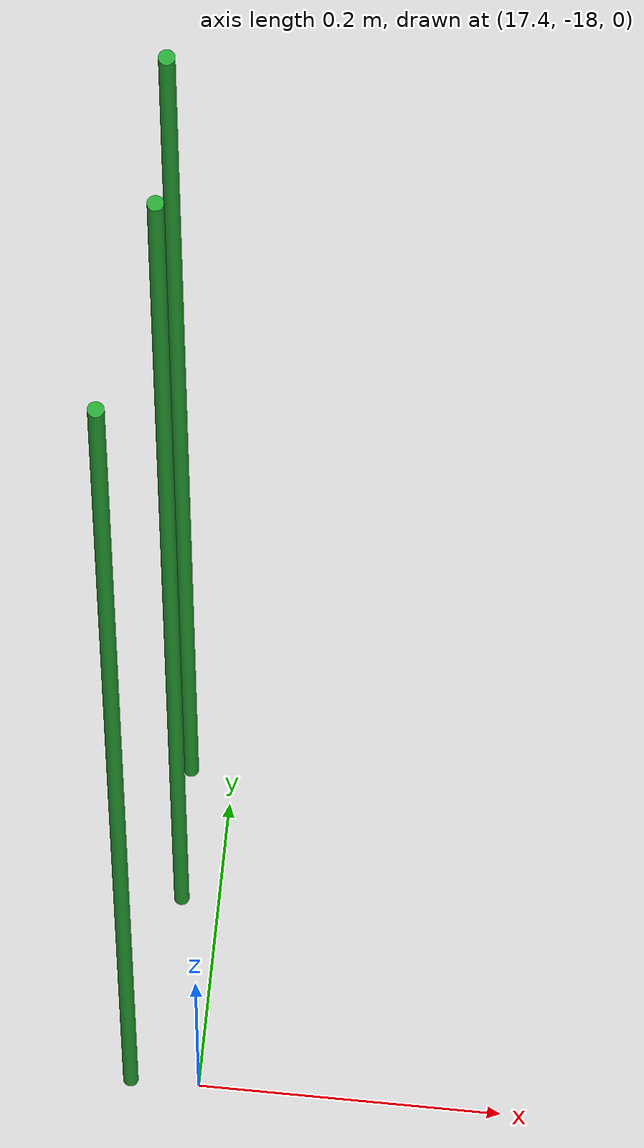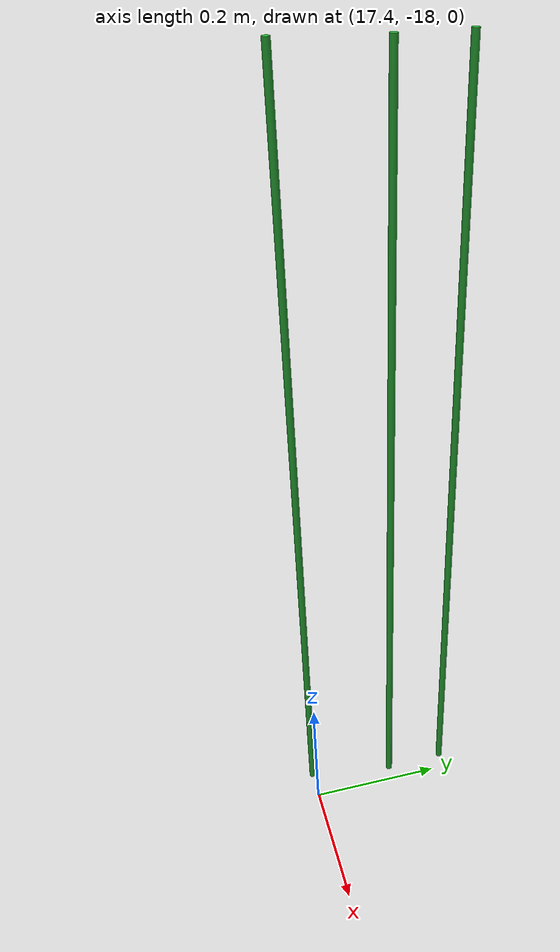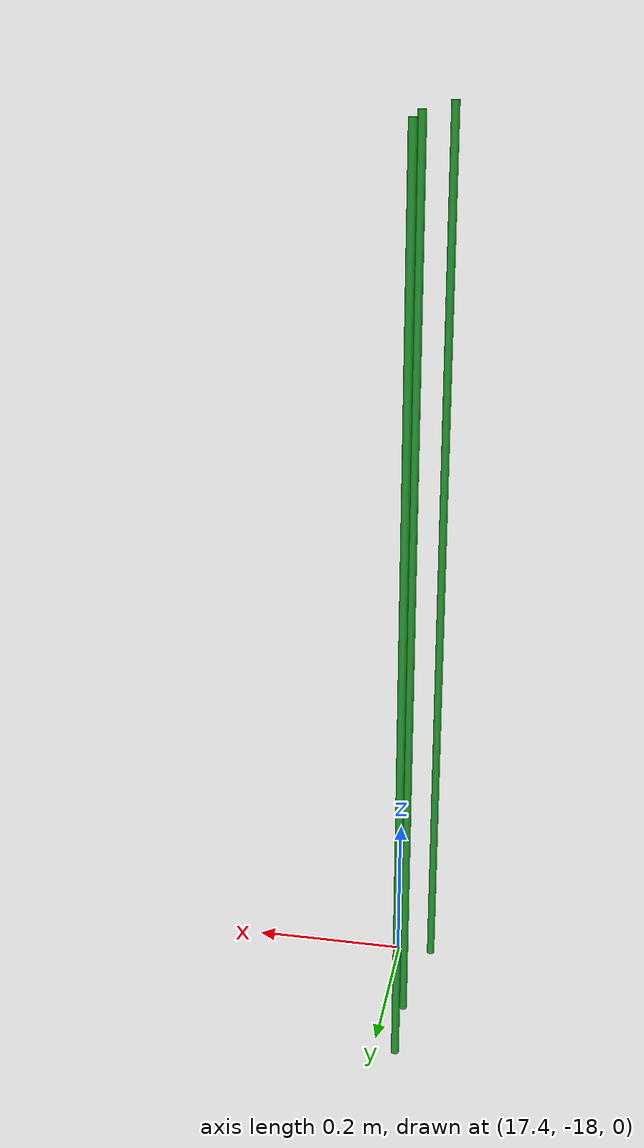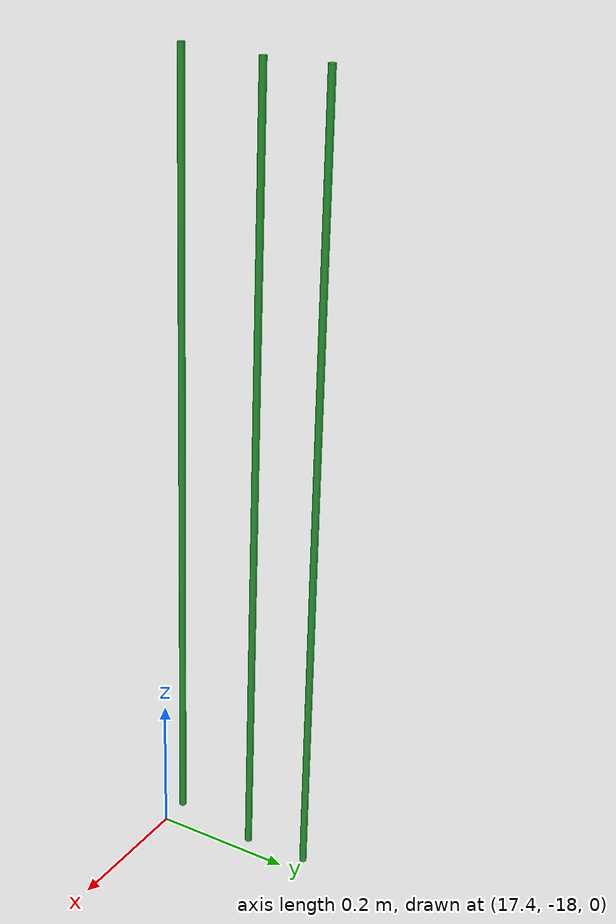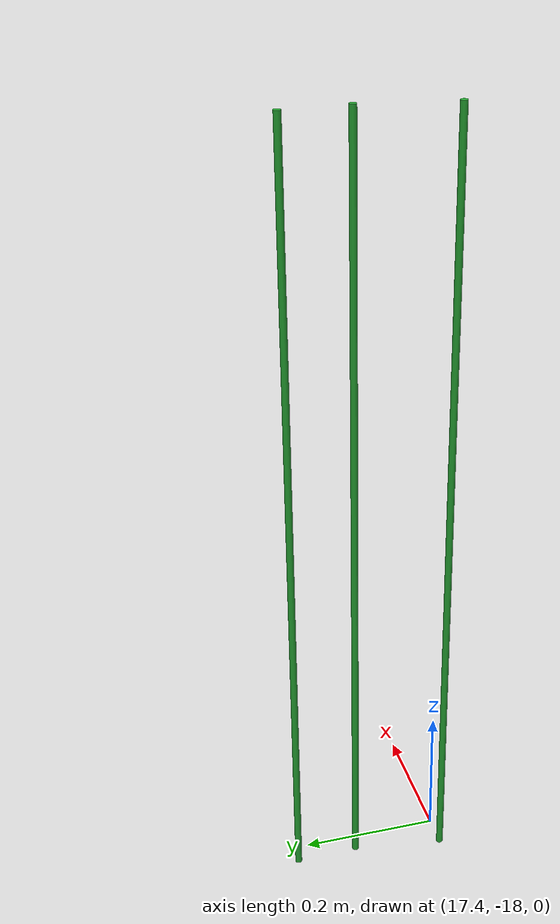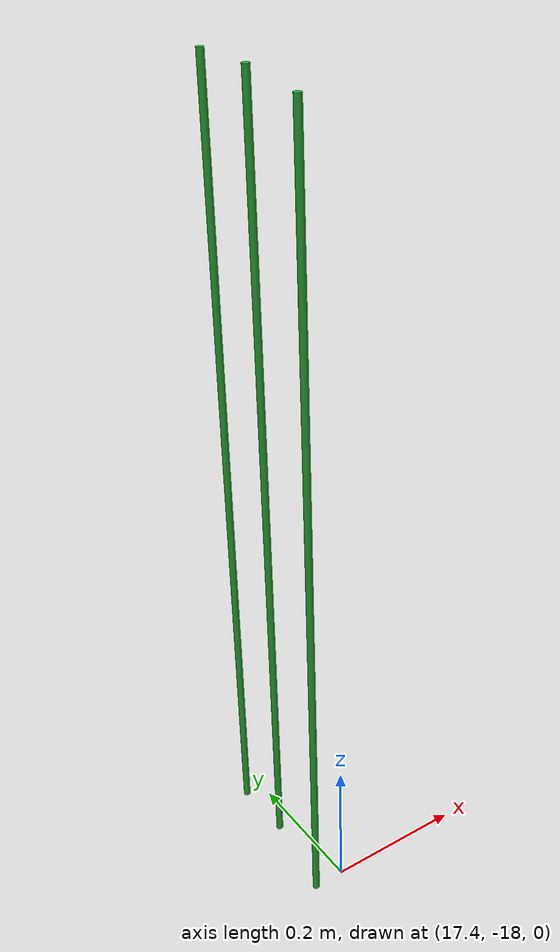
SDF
<sdf version="1.6">
 <world name="default">
  <model name="pole_27_clone_clone_194">
   <link name="link">
    <inertial>
     <mass>1</mass>
     <inertia><ixx>1</ixx><ixy>0</ixy><ixz>0</ixz><iyy>1</iyy><iyz>0</iyz><izz>1</izz></inertia>
    </inertial>
    <visual name="visual">
     <geometry><cylinder><length>1.15</length><radius>0.005</radius></cylinder></geometry>
     <material>
      <script><uri>file://media/materials/scripts/gazebo.material</uri><name>Gazebo/Green</name></script>
      <shader type="vertex"><normal_map>__default__</normal_map></shader>
      <emissive>0 0.1 0 1</emissive>
      <specular>0 0.01 0 1</specular>
      <ambient>0 0.5 0 1</ambient>
      <diffuse>0 0.05 0 1</diffuse>
     </material>
    </visual>
    <collision name="collision">
     <geometry><cylinder><radius>0.005</radius><length>1.15</length></cylinder></geometry>
     <surface>
      <friction>
       <ode><mu>1</mu><mu2>1</mu2><fdir1>0 0 0</fdir1><slip1>0</slip1><slip2>0</slip2></ode>
       <torsional>
        <coefficient>1</coefficient>
        <patch_radius>0</patch_radius>
        <surface_radius>0</surface_radius>
        <use_patch_radius>1</use_patch_radius>
        <ode><slip>0</slip></ode>
       </torsional>
      </friction>
      <bounce><restitution_coefficient>0</restitution_coefficient><threshold>1e+06</threshold></bounce>
      <contact>
       <collide_without_contact>0</collide_without_contact>
       <collide_without_contact_bitmask>1</collide_without_contact_bitmask>
       <collide_bitmask>1</collide_bitmask>
       <ode>
        <soft_cfm>0</soft_cfm>
        <soft_erp>0.2</soft_erp>
        <kp>1e+13</kp>
        <kd>1</kd>
        <max_vel>0.01</max_vel>
        <min_depth>0</min_depth>
       </ode>
       <bullet>
        <split_impulse>1</split_impulse>
        <split_impulse_penetration_threshold>-0.01</split_impulse_penetration_threshold>
        <soft_cfm>0</soft_cfm>
        <soft_erp>0.2</soft_erp>
        <kp>1e+13</kp>
        <kd>1</kd>
       </bullet>
      </contact>
     </surface>
    </collision>
   </link>
   <static>1</static>
   <pose>17.3544 -17.9998 0.575 0 -0 0</pose>
  </model>
  <model name="pole_27_clone_clone_199">
   <link name="link">
    <inertial>
     <mass>1</mass>
     <inertia><ixx>1</ixx><ixy>0</ixy><ixz>0</ixz><iyy>1</iyy><iyz>0</iyz><izz>1</izz></inertia>
    </inertial>
    <visual name="visual">
     <geometry><cylinder><length>1.15</length><radius>0.005</radius></cylinder></geometry>
     <material>
      <script><uri>file://media/materials/scripts/gazebo.material</uri><name>Gazebo/Green</name></script>
      <shader type="vertex"><normal_map>__default__</normal_map></shader>
      <emissive>0 0.1 0 1</emissive>
      <specular>0 0.01 0 1</specular>
      <ambient>0 0.5 0 1</ambient>
      <diffuse>0 0.05 0 1</diffuse>
     </material>
    </visual>
    <collision name="collision">
     <geometry><cylinder><radius>0.005</radius><length>1.15</length></cylinder></geometry>
     <surface>
      <friction>
       <ode><mu>1</mu><mu2>1</mu2><fdir1>0 0 0</fdir1><slip1>0</slip1><slip2>0</slip2></ode>
       <torsional>
        <coefficient>1</coefficient>
        <patch_radius>0</patch_radius>
        <surface_radius>0</surface_radius>
        <use_patch_radius>1</use_patch_radius>
        <ode><slip>0</slip></ode>
       </torsional>
      </friction>
      <bounce><restitution_coefficient>0</restitution_coefficient><threshold>1e+06</threshold></bounce>
      <contact>
       <collide_without_contact>0</collide_without_contact>
       <collide_without_contact_bitmask>1</collide_without_contact_bitmask>
       <collide_bitmask>1</collide_bitmask>
       <ode>
        <soft_cfm>0</soft_cfm>
        <soft_erp>0.2</soft_erp>
        <kp>1e+13</kp>
        <kd>1</kd>
        <max_vel>0.01</max_vel>
        <min_depth>0</min_depth>
       </ode>
       <bullet>
        <split_impulse>1</split_impulse>
        <split_impulse_penetration_threshold>-0.01</split_impulse_penetration_threshold>
        <soft_cfm>0</soft_cfm>
        <soft_erp>0.2</soft_erp>
        <kp>1e+13</kp>
        <kd>1</kd>
       </bullet>
      </contact>
     </surface>
    </collision>
   </link>
   <static>1</static>
   <pose>17.3747 -17.8694 0.575 0 -0 0</pose>
  </model>
  <model name="pole_27_clone_clone_202">
   <link name="link">
    <inertial>
     <mass>1</mass>
     <inertia><ixx>1</ixx><ixy>0</ixy><ixz>0</ixz><iyy>1</iyy><iyz>0</iyz><izz>1</izz></inertia>
    </inertial>
    <visual name="visual">
     <geometry><cylinder><length>1.15</length><radius>0.005</radius></cylinder></geometry>
     <material>
      <script><uri>file://media/materials/scripts/gazebo.material</uri><name>Gazebo/Green</name></script>
      <shader type="vertex"><normal_map>__default__</normal_map></shader>
      <emissive>0 0.1 0 1</emissive>
      <specular>0 0.01 0 1</specular>
      <ambient>0 0.5 0 1</ambient>
      <diffuse>0 0.05 0 1</diffuse>
     </material>
    </visual>
    <collision name="collision">
     <geometry><cylinder><radius>0.005</radius><length>1.15</length></cylinder></geometry>
     <surface>
      <friction>
       <ode><mu>1</mu><mu2>1</mu2><fdir1>0 0 0</fdir1><slip1>0</slip1><slip2>0</slip2></ode>
       <torsional>
        <coefficient>1</coefficient>
        <patch_radius>0</patch_radius>
        <surface_radius>0</surface_radius>
        <use_patch_radius>1</use_patch_radius>
        <ode><slip>0</slip></ode>
       </torsional>
      </friction>
      <bounce><restitution_coefficient>0</restitution_coefficient><threshold>1e+06</threshold></bounce>
      <contact>
       <collide_without_contact>0</collide_without_contact>
       <collide_without_contact_bitmask>1</collide_without_contact_bitmask>
       <collide_bitmask>1</collide_bitmask>
       <ode>
        <soft_cfm>0</soft_cfm>
        <soft_erp>0.2</soft_erp>
        <kp>1e+13</kp>
        <kd>1</kd>
        <max_vel>0.01</max_vel>
        <min_depth>0</min_depth>
       </ode>
       <bullet>
        <split_impulse>1</split_impulse>
        <split_impulse_penetration_threshold>-0.01</split_impulse_penetration_threshold>
        <soft_cfm>0</soft_cfm>
        <soft_erp>0.2</soft_erp>
        <kp>1e+13</kp>
        <kd>1</kd>
       </bullet>
      </contact>
     </surface>
    </collision>
   </link>
   <static>1</static>
   <pose>17.3716 -17.7778 0.575 0 -0 0</pose>
  </model>
 </world>
</sdf>
